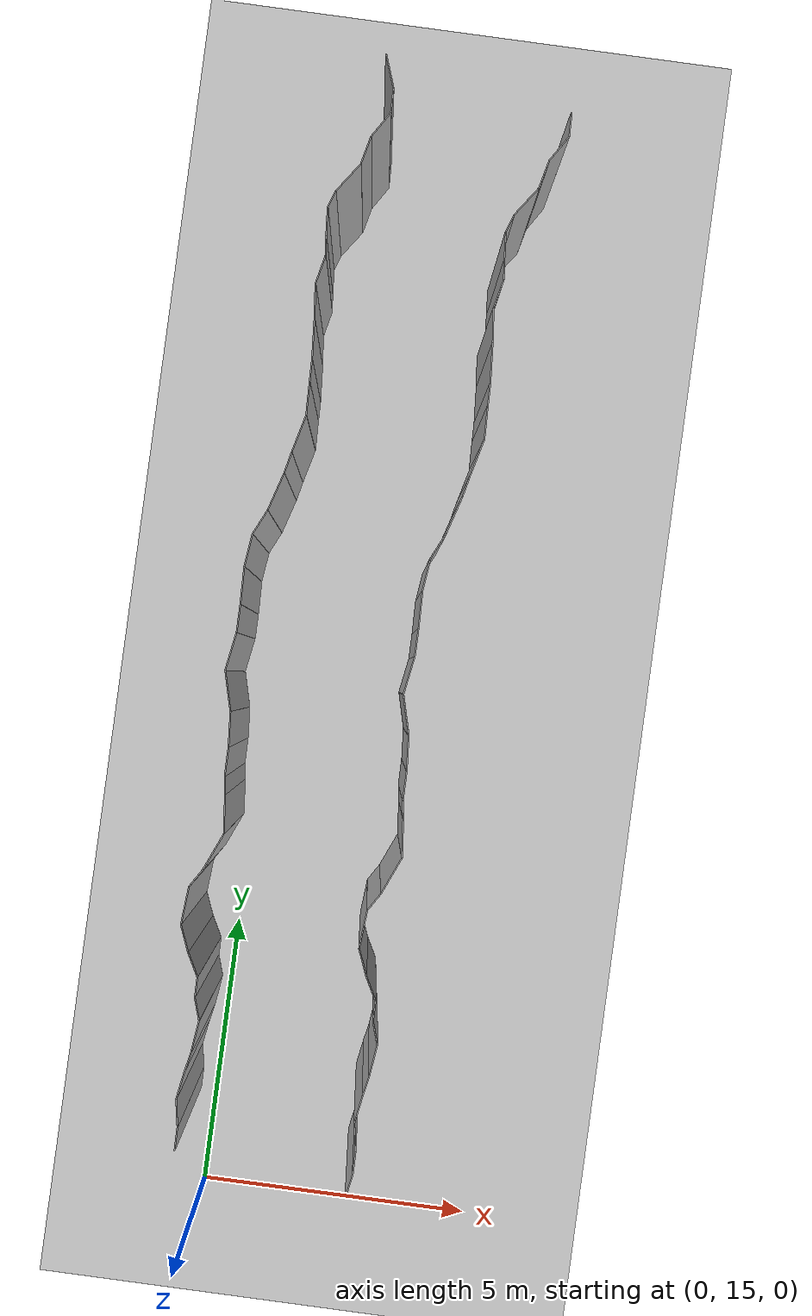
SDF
<sdf version="1.6">
 <world name="default">
  <model name="ground_plane">
   <static>1</static>
   <link name="link">
    <collision name="collision">
     <geometry><plane><normal>0 0 1</normal><size>200 200</size></plane></geometry>
     <surface><friction><ode><mu>100</mu><mu2>50</mu2></ode></friction></surface>
    </collision>
    <visual name="visual">
     <cast_shadows>0</cast_shadows>
     <geometry><plane><normal>0 0 1</normal><size>200 200</size></plane></geometry>
     <material>
      <script><uri>file://media/materials/scripts/gazebo.material</uri><name>Gazebo/Grey</name></script>
     </material>
    </visual>
   </link>
   <pose>0 100 0 0 -0 0</pose>
  </model>
  <model name="wall_73">
   <static>1</static>
   <pose>2.658869126771613 16.50026985802617 2 0 0 -0.1731578660085581</pose>
   <link name="link">
    <collision name="collision"><geometry><box><size>0.02 0.404420322567 4</size></box></geometry></collision>
    <visual name="visual">
     <material>
      <script><name>Gazebo/Grey</name><uri>file://media/materials/scripts/gazebo.material</uri></script>
     </material>
     <geometry><box><size>0.02 0.404420322567 4</size></box></geometry>
    </visual>
   </link>
  </model>
  <model name="wall_74">
   <static>1</static>
   <pose>-0.3087108087761171 16.89664331656107 2 0 0 0.012269457442747742</pose>
   <link name="link">
    <collision name="collision"><geometry><box><size>0.02 0.394404144756 4</size></box></geometry></collision>
    <visual name="visual">
     <material>
      <script><name>Gazebo/Grey</name><uri>file://media/materials/scripts/gazebo.material</uri></script>
     </material>
     <geometry><box><size>0.02 0.394404144756 4</size></box></geometry>
    </visual>
   </link>
  </model>
  <model name="wall_75">
   <static>1</static>
   <pose>2.6912891912238828 16.89664331656107 2 0 0 0.012269457442747742</pose>
   <link name="link">
    <collision name="collision"><geometry><box><size>0.02 0.394404144756 4</size></box></geometry></collision>
    <visual name="visual">
     <material>
      <script><name>Gazebo/Grey</name><uri>file://media/materials/scripts/gazebo.material</uri></script>
     </material>
     <geometry><box><size>0.02 0.394404144756 4</size></box></geometry>
    </visual>
   </link>
  </model>
  <model name="wall_76">
   <static>1</static>
   <pose>-0.3530695926732368 17.322582289823302 2 0 0 0.18132595956905626</pose>
   <link name="link">
    <collision name="collision"><geometry><box><size>0.02 0.465129073691 4</size></box></geometry></collision>
    <visual name="visual">
     <material>
      <script><name>Gazebo/Grey</name><uri>file://media/materials/scripts/gazebo.material</uri></script>
     </material>
     <geometry><box><size>0.02 0.465129073691 4</size></box></geometry>
    </visual>
   </link>
  </model>
  <model name="wall_77">
   <static>1</static>
   <pose>2.646930407326763 17.322582289823302 2 0 0 0.18132595956905626</pose>
   <link name="link">
    <collision name="collision"><geometry><box><size>0.02 0.465129073691 4</size></box></geometry></collision>
    <visual name="visual">
     <material>
      <script><name>Gazebo/Grey</name><uri>file://media/materials/scripts/gazebo.material</uri></script>
     </material>
     <geometry><box><size>0.02 0.465129073691 4</size></box></geometry>
    </visual>
   </link>
  </model>
  <model name="wall_78">
   <static>1</static>
   <pose>-0.35659133693472317 17.789352559761916 2 0 0 -0.1600255368035915</pose>
   <link name="link">
    <collision name="collision"><geometry><box><size>0.02 0.482197992039 4</size></box></geometry></collision>
    <visual name="visual">
     <material>
      <script><name>Gazebo/Grey</name><uri>file://media/materials/scripts/gazebo.material</uri></script>
     </material>
     <geometry><box><size>0.02 0.482197992039 4</size></box></geometry>
    </visual>
   </link>
  </model>
  <model name="wall_79">
   <static>1</static>
   <pose>2.643408663065277 17.789352559761916 2 0 0 -0.1600255368035915</pose>
   <link name="link">
    <collision name="collision"><geometry><box><size>0.02 0.482197992039 4</size></box></geometry></collision>
    <visual name="visual">
     <material>
      <script><name>Gazebo/Grey</name><uri>file://media/materials/scripts/gazebo.material</uri></script>
     </material>
     <geometry><box><size>0.02 0.482197992039 4</size></box></geometry>
    </visual>
   </link>
  </model>
  <model name="wall_80">
   <static>1</static>
   <pose>-0.2866491413764098 18.18500765076612 2 0 0 -0.19737936277043475</pose>
   <link name="link">
    <collision name="collision"><geometry><box><size>0.02 0.321515727166 4</size></box></geometry></collision>
    <visual name="visual">
     <material>
      <script><name>Gazebo/Grey</name><uri>file://media/materials/scripts/gazebo.material</uri></script>
     </material>
     <geometry><box><size>0.02 0.321515727166 4</size></box></geometry>
    </visual>
   </link>
  </model>
  <model name="wall_81">
   <static>1</static>
   <pose>2.71335085862359 18.18500765076612 2 0 0 -0.19737936277043475</pose>
   <link name="link">
    <collision name="collision"><geometry><box><size>0.02 0.321515727166 4</size></box></geometry></collision>
    <visual name="visual">
     <material>
      <script><name>Gazebo/Grey</name><uri>file://media/materials/scripts/gazebo.material</uri></script>
     </material>
     <geometry><box><size>0.02 0.321515727166 4</size></box></geometry>
    </visual>
   </link>
  </model>
  <model name="wall_82">
   <static>1</static>
   <pose>-0.2231565532036521 18.62250226336746 2 0 0 -0.11373611406130761</pose>
   <link name="link">
    <collision name="collision"><geometry><box><size>0.02 0.563355927706 4</size></box></geometry></collision>
    <visual name="visual">
     <material>
      <script><name>Gazebo/Grey</name><uri>file://media/materials/scripts/gazebo.material</uri></script>
     </material>
     <geometry><box><size>0.02 0.563355927706 4</size></box></geometry>
    </visual>
   </link>
  </model>
  <model name="wall_83">
   <static>1</static>
   <pose>2.776843446796348 18.62250226336746 2 0 0 -0.11373611406130761</pose>
   <link name="link">
    <collision name="collision"><geometry><box><size>0.02 0.563355927706 4</size></box></geometry></collision>
    <visual name="visual">
     <material>
      <script><name>Gazebo/Grey</name><uri>file://media/materials/scripts/gazebo.material</uri></script>
     </material>
     <geometry><box><size>0.02 0.563355927706 4</size></box></geometry>
    </visual>
   </link>
  </model>
  <model name="wall_84">
   <static>1</static>
   <pose>-0.25260437373817557 19.090832963130495 2 0 0 0.31500979514093436</pose>
   <link name="link">
    <collision name="collision"><geometry><box><size>0.02 0.396453453192 4</size></box></geometry></collision>
    <visual name="visual">
     <material>
      <script><name>Gazebo/Grey</name><uri>file://media/materials/scripts/gazebo.material</uri></script>
     </material>
     <geometry><box><size>0.02 0.396453453192 4</size></box></geometry>
    </visual>
   </link>
  </model>
  <model name="wall_85">
   <static>1</static>
   <pose>2.7473956262618247 19.090832963130495 2 0 0 0.31500979514093436</pose>
   <link name="link">
    <collision name="collision"><geometry><box><size>0.02 0.396453453192 4</size></box></geometry></collision>
    <visual name="visual">
     <material>
      <script><name>Gazebo/Grey</name><uri>file://media/materials/scripts/gazebo.material</uri></script>
     </material>
     <geometry><box><size>0.02 0.396453453192 4</size></box></geometry>
    </visual>
   </link>
  </model>
  <model name="wall_86">
   <static>1</static>
   <pose>-0.31498283444763997 19.449805418435357 2 0 0 0.005646337447293839</pose>
   <link name="link">
    <collision name="collision"><geometry><box><size>0.02 0.341005041838 4</size></box></geometry></collision>
    <visual name="visual">
     <material>
      <script><name>Gazebo/Grey</name><uri>file://media/materials/scripts/gazebo.material</uri></script>
     </material>
     <geometry><box><size>0.02 0.341005041838 4</size></box></geometry>
    </visual>
   </link>
  </model>
  <model name="wall_87">
   <static>1</static>
   <pose>2.68501716555236 19.449805418435357 2 0 0 0.005646337447293839</pose>
   <link name="link">
    <collision name="collision"><geometry><box><size>0.02 0.341005041838 4</size></box></geometry></collision>
    <visual name="visual">
     <material>
      <script><name>Gazebo/Grey</name><uri>file://media/materials/scripts/gazebo.material</uri></script>
     </material>
     <geometry><box><size>0.02 0.341005041838 4</size></box></geometry>
    </visual>
   </link>
  </model>
  <model name="wall_88">
   <static>1</static>
   <pose>-0.4210132094849025 19.815427562531113 2 0 0 0.4939484783348121</pose>
   <link name="link">
    <collision name="collision"><geometry><box><size>0.02 0.443224287674 4</size></box></geometry></collision>
    <visual name="visual">
     <material>
      <script><name>Gazebo/Grey</name><uri>file://media/materials/scripts/gazebo.material</uri></script>
     </material>
     <geometry><box><size>0.02 0.443224287674 4</size></box></geometry>
    </visual>
   </link>
  </model>
  <model name="wall_89">
   <static>1</static>
   <pose>2.5789867905150974 19.815427562531113 2 0 0 0.4939484783348121</pose>
   <link name="link">
    <collision name="collision"><geometry><box><size>0.02 0.443224287674 4</size></box></geometry></collision>
    <visual name="visual">
     <material>
      <script><name>Gazebo/Grey</name><uri>file://media/materials/scripts/gazebo.material</uri></script>
     </material>
     <geometry><box><size>0.02 0.443224287674 4</size></box></geometry>
    </visual>
   </link>
  </model>
  <model name="wall_90">
   <static>1</static>
   <pose>-0.6163092625902354 20.23183404676666 2 0 0 0.3871686472160626</pose>
   <link name="link">
    <collision name="collision"><geometry><box><size>0.02 0.477944908812 4</size></box></geometry></collision>
    <visual name="visual">
     <material>
      <script><name>Gazebo/Grey</name><uri>file://media/materials/scripts/gazebo.material</uri></script>
     </material>
     <geometry><box><size>0.02 0.477944908812 4</size></box></geometry>
    </visual>
   </link>
  </model>
  <model name="wall_91">
   <static>1</static>
   <pose>2.3836907374097644 20.23183404676666 2 0 0 0.3871686472160626</pose>
   <link name="link">
    <collision name="collision"><geometry><box><size>0.02 0.477944908812 4</size></box></geometry></collision>
    <visual name="visual">
     <material>
      <script><name>Gazebo/Grey</name><uri>file://media/materials/scripts/gazebo.material</uri></script>
     </material>
     <geometry><box><size>0.02 0.477944908812 4</size></box></geometry>
    </visual>
   </link>
  </model>
  <model name="wall_92">
   <static>1</static>
   <pose>-0.6821982862722386 20.773969563873283 2 0 0 -0.07571367700383373</pose>
   <link name="link">
    <collision name="collision"><geometry><box><size>0.02 0.643546451487 4</size></box></geometry></collision>
    <visual name="visual">
     <material>
      <script><name>Gazebo/Grey</name><uri>file://media/materials/scripts/gazebo.material</uri></script>
     </material>
     <geometry><box><size>0.02 0.643546451487 4</size></box></geometry>
    </visual>
   </link>
  </model>
  <model name="wall_93">
   <static>1</static>
   <pose>2.3178017137277616 20.773969563873283 2 0 0 -0.07571367700383373</pose>
   <link name="link">
    <collision name="collision"><geometry><box><size>0.02 0.643546451487 4</size></box></geometry></collision>
    <visual name="visual">
     <material>
      <script><name>Gazebo/Grey</name><uri>file://media/materials/scripts/gazebo.material</uri></script>
     </material>
     <geometry><box><size>0.02 0.643546451487 4</size></box></geometry>
    </visual>
   </link>
  </model>
  <model name="wall_94">
   <static>1</static>
   <pose>-0.5614120115282334 21.252134825890693 2 0 0 -0.5499858893473405</pose>
   <link name="link">
    <collision name="collision"><geometry><box><size>0.02 0.369051031509 4</size></box></geometry></collision>
    <visual name="visual">
     <material>
      <script><name>Gazebo/Grey</name><uri>file://media/materials/scripts/gazebo.material</uri></script>
     </material>
     <geometry><box><size>0.02 0.369051031509 4</size></box></geometry>
    </visual>
   </link>
  </model>
  <model name="wall_95">
   <static>1</static>
   <pose>2.4385879884717667 21.252134825890693 2 0 0 -0.5499858893473405</pose>
   <link name="link">
    <collision name="collision"><geometry><box><size>0.02 0.369051031509 4</size></box></geometry></collision>
    <visual name="visual">
     <material>
      <script><name>Gazebo/Grey</name><uri>file://media/materials/scripts/gazebo.material</uri></script>
     </material>
     <geometry><box><size>0.02 0.369051031509 4</size></box></geometry>
    </visual>
   </link>
  </model>
  <model name="wall_96">
   <static>1</static>
   <pose>-0.33176657974889967 21.7266747197822 2 0 0 -0.3975304450154721</pose>
   <link name="link">
    <collision name="collision"><geometry><box><size>0.02 0.68811099333 4</size></box></geometry></collision>
    <visual name="visual">
     <material>
      <script><name>Gazebo/Grey</name><uri>file://media/materials/scripts/gazebo.material</uri></script>
     </material>
     <geometry><box><size>0.02 0.68811099333 4</size></box></geometry>
    </visual>
   </link>
  </model>
  <model name="wall_97">
   <static>1</static>
   <pose>2.6682334202511004 21.7266747197822 2 0 0 -0.3975304450154721</pose>
   <link name="link">
    <collision name="collision"><geometry><box><size>0.02 0.68811099333 4</size></box></geometry></collision>
    <visual name="visual">
     <material>
      <script><name>Gazebo/Grey</name><uri>file://media/materials/scripts/gazebo.material</uri></script>
     </material>
     <geometry><box><size>0.02 0.68811099333 4</size></box></geometry>
    </visual>
   </link>
  </model>
  <model name="wall_98">
   <static>1</static>
   <pose>-0.23316513521002616 22.36951696986751 2 0 0 0.10585393020668167</pose>
   <link name="link">
    <collision name="collision"><geometry><box><size>0.02 0.65489814852 4</size></box></geometry></collision>
    <visual name="visual">
     <material>
      <script><name>Gazebo/Grey</name><uri>file://media/materials/scripts/gazebo.material</uri></script>
     </material>
     <geometry><box><size>0.02 0.65489814852 4</size></box></geometry>
    </visual>
   </link>
  </model>
  <model name="wall_99">
   <static>1</static>
   <pose>2.7668348647899736 22.36951696986751 2 0 0 0.10585393020668167</pose>
   <link name="link">
    <collision name="collision"><geometry><box><size>0.02 0.65489814852 4</size></box></geometry></collision>
    <visual name="visual">
     <material>
      <script><name>Gazebo/Grey</name><uri>file://media/materials/scripts/gazebo.material</uri></script>
     </material>
     <geometry><box><size>0.02 0.65489814852 4</size></box></geometry>
    </visual>
   </link>
  </model>
  <model name="wall_100">
   <static>1</static>
   <pose>-0.2905735342766929 22.847543351877647 2 0 0 0.14856781748174686</pose>
   <link name="link">
    <collision name="collision"><geometry><box><size>0.02 0.308215551348 4</size></box></geometry></collision>
    <visual name="visual">
     <material>
      <script><name>Gazebo/Grey</name><uri>file://media/materials/scripts/gazebo.material</uri></script>
     </material>
     <geometry><box><size>0.02 0.308215551348 4</size></box></geometry>
    </visual>
   </link>
  </model>
  <model name="wall_101">
   <static>1</static>
   <pose>2.709426465723307 22.847543351877647 2 0 0 0.14856781748174686</pose>
   <link name="link">
    <collision name="collision"><geometry><box><size>0.02 0.308215551348 4</size></box></geometry></collision>
    <visual name="visual">
     <material>
      <script><name>Gazebo/Grey</name><uri>file://media/materials/scripts/gazebo.material</uri></script>
     </material>
     <geometry><box><size>0.02 0.308215551348 4</size></box></geometry>
    </visual>
   </link>
  </model>
  <model name="wall_102">
   <static>1</static>
   <pose>-0.3149790743787968 23.246512554853442 2 0 0 0.0064657746558790365</pose>
   <link name="link">
    <collision name="collision"><geometry><box><size>0.02 0.493128438348 4</size></box></geometry></collision>
    <visual name="visual">
     <material>
      <script><name>Gazebo/Grey</name><uri>file://media/materials/scripts/gazebo.material</uri></script>
     </material>
     <geometry><box><size>0.02 0.493128438348 4</size></box></geometry>
    </visual>
   </link>
  </model>
  <model name="wall_103">
   <static>1</static>
   <pose>2.6850209256212034 23.246512554853442 2 0 0 0.0064657746558790365</pose>
   <link name="link">
    <collision name="collision"><geometry><box><size>0.02 0.493128438348 4</size></box></geometry></collision>
    <visual name="visual">
     <material>
      <script><name>Gazebo/Grey</name><uri>file://media/materials/scripts/gazebo.material</uri></script>
     </material>
     <geometry><box><size>0.02 0.493128438348 4</size></box></geometry>
    </visual>
   </link>
  </model>
  <model name="wall_104">
   <static>1</static>
   <pose>-0.34027030061243074 23.790517139347806 2 0 0 0.07950048596791094</pose>
   <link name="link">
    <collision name="collision"><geometry><box><size>0.02 0.596775955112 4</size></box></geometry></collision>
    <visual name="visual">
     <material>
      <script><name>Gazebo/Grey</name><uri>file://media/materials/scripts/gazebo.material</uri></script>
     </material>
     <geometry><box><size>0.02 0.596775955112 4</size></box></geometry>
    </visual>
   </link>
  </model>
  <model name="wall_105">
   <static>1</static>
   <pose>2.659729699387569 23.790517139347806 2 0 0 0.07950048596791094</pose>
   <link name="link">
    <collision name="collision"><geometry><box><size>0.02 0.596775955112 4</size></box></geometry></collision>
    <visual name="visual">
     <material>
      <script><name>Gazebo/Grey</name><uri>file://media/materials/scripts/gazebo.material</uri></script>
     </material>
     <geometry><box><size>0.02 0.596775955112 4</size></box></geometry>
    </visual>
   </link>
  </model>
  <model name="wall_106">
   <static>1</static>
   <pose>-0.45287071812648033 24.422036674167828 2 0 0 0.260090919706694</pose>
   <link name="link">
    <collision name="collision"><geometry><box><size>0.02 0.69140223886 4</size></box></geometry></collision>
    <visual name="visual">
     <material>
      <script><name>Gazebo/Grey</name><uri>file://media/materials/scripts/gazebo.material</uri></script>
     </material>
     <geometry><box><size>0.02 0.69140223886 4</size></box></geometry>
    </visual>
   </link>
  </model>
  <model name="wall_107">
   <static>1</static>
   <pose>2.5471292818735196 24.422036674167828 2 0 0 0.260090919706694</pose>
   <link name="link">
    <collision name="collision"><geometry><box><size>0.02 0.69140223886 4</size></box></geometry></collision>
    <visual name="visual">
     <material>
      <script><name>Gazebo/Grey</name><uri>file://media/materials/scripts/gazebo.material</uri></script>
     </material>
     <geometry><box><size>0.02 0.69140223886 4</size></box></geometry>
    </visual>
   </link>
  </model>
  <model name="wall_108">
   <static>1</static>
   <pose>-0.49038769322437836 25.081624239325503 2 0 0 -0.1565705770784225</pose>
   <link name="link">
    <collision name="collision"><geometry><box><size>0.02 0.659089179241 4</size></box></geometry></collision>
    <visual name="visual">
     <material>
      <script><name>Gazebo/Grey</name><uri>file://media/materials/scripts/gazebo.material</uri></script>
     </material>
     <geometry><box><size>0.02 0.659089179241 4</size></box></geometry>
    </visual>
   </link>
  </model>
  <model name="wall_109">
   <static>1</static>
   <pose>2.5096123067756215 25.081624239325503 2 0 0 -0.1565705770784225</pose>
   <link name="link">
    <collision name="collision"><geometry><box><size>0.02 0.659089179241 4</size></box></geometry></collision>
    <visual name="visual">
     <material>
      <script><name>Gazebo/Grey</name><uri>file://media/materials/scripts/gazebo.material</uri></script>
     </material>
     <geometry><box><size>0.02 0.659089179241 4</size></box></geometry>
    </visual>
   </link>
  </model>
  <model name="wall_110">
   <static>1</static>
   <pose>-0.43943652499736885 25.64405556807473 2 0 0 0.0018371987051538391</pose>
   <link name="link">
    <collision name="collision"><geometry><box><size>0.02 0.473836357964 4</size></box></geometry></collision>
    <visual name="visual">
     <material>
      <script><name>Gazebo/Grey</name><uri>file://media/materials/scripts/gazebo.material</uri></script>
     </material>
     <geometry><box><size>0.02 0.473836357964 4</size></box></geometry>
    </visual>
   </link>
  </model>
  <model name="wall_111">
   <static>1</static>
   <pose>2.560563475002631 25.64405556807473 2 0 0 0.0018371987051538391</pose>
   <link name="link">
    <collision name="collision"><geometry><box><size>0.02 0.473836357964 4</size></box></geometry></collision>
    <visual name="visual">
     <material>
      <script><name>Gazebo/Grey</name><uri>file://media/materials/scripts/gazebo.material</uri></script>
     </material>
     <geometry><box><size>0.02 0.473836357964 4</size></box></geometry>
    </visual>
   </link>
  </model>
  <model name="wall_112">
   <static>1</static>
   <pose>-0.44920069268218354 26.197704823313195 2 0 0 0.029445150232871652</pose>
   <link name="link">
    <collision name="collision"><geometry><box><size>0.02 0.633737662956 4</size></box></geometry></collision>
    <visual name="visual">
     <material>
      <script><name>Gazebo/Grey</name><uri>file://media/materials/scripts/gazebo.material</uri></script>
     </material>
     <geometry><box><size>0.02 0.633737662956 4</size></box></geometry>
    </visual>
   </link>
  </model>
  <model name="wall_113">
   <static>1</static>
   <pose>2.5507993073178166 26.197704823313195 2 0 0 0.029445150232871652</pose>
   <link name="link">
    <collision name="collision"><geometry><box><size>0.02 0.633737662956 4</size></box></geometry></collision>
    <visual name="visual">
     <material>
      <script><name>Gazebo/Grey</name><uri>file://media/materials/scripts/gazebo.material</uri></script>
     </material>
     <geometry><box><size>0.02 0.633737662956 4</size></box></geometry>
    </visual>
   </link>
  </model>
  <model name="wall_114">
   <static>1</static>
   <pose>-0.4268784752055749 26.79324874928811 2 0 0 -0.1130372696072286</pose>
   <link name="link">
    <collision name="collision"><geometry><box><size>0.02 0.561206470328 4</size></box></geometry></collision>
    <visual name="visual">
     <material>
      <script><name>Gazebo/Grey</name><uri>file://media/materials/scripts/gazebo.material</uri></script>
     </material>
     <geometry><box><size>0.02 0.561206470328 4</size></box></geometry>
    </visual>
   </link>
  </model>
  <model name="wall_115">
   <static>1</static>
   <pose>2.5731215247944252 26.79324874928811 2 0 0 -0.1130372696072286</pose>
   <link name="link">
    <collision name="collision"><geometry><box><size>0.02 0.561206470328 4</size></box></geometry></collision>
    <visual name="visual">
     <material>
      <script><name>Gazebo/Grey</name><uri>file://media/materials/scripts/gazebo.material</uri></script>
     </material>
     <geometry><box><size>0.02 0.561206470328 4</size></box></geometry>
    </visual>
   </link>
  </model>
  <model name="wall_116">
   <static>1</static>
   <pose>-0.2968633645609247 27.28419847994507 2 0 0 -0.4341724851815221</pose>
   <link name="link">
    <collision name="collision"><geometry><box><size>0.02 0.467665267563 4</size></box></geometry></collision>
    <visual name="visual">
     <material>
      <script><name>Gazebo/Grey</name><uri>file://media/materials/scripts/gazebo.material</uri></script>
     </material>
     <geometry><box><size>0.02 0.467665267563 4</size></box></geometry>
    </visual>
   </link>
  </model>
  <model name="wall_117">
   <static>1</static>
   <pose>2.7031366354390753 27.28419847994507 2 0 0 -0.4341724851815221</pose>
   <link name="link">
    <collision name="collision"><geometry><box><size>0.02 0.467665267563 4</size></box></geometry></collision>
    <visual name="visual">
     <material>
      <script><name>Gazebo/Grey</name><uri>file://media/materials/scripts/gazebo.material</uri></script>
     </material>
     <geometry><box><size>0.02 0.467665267563 4</size></box></geometry>
    </visual>
   </link>
  </model>
  <model name="wall_118">
   <static>1</static>
   <pose>-0.10361012116887132 27.821605806746955 2 0 0 -0.2838474382901545</pose>
   <link name="link">
    <collision name="collision"><geometry><box><size>0.02 0.677656470673 4</size></box></geometry></collision>
    <visual name="visual">
     <material>
      <script><name>Gazebo/Grey</name><uri>file://media/materials/scripts/gazebo.material</uri></script>
     </material>
     <geometry><box><size>0.02 0.677656470673 4</size></box></geometry>
    </visual>
   </link>
  </model>
  <model name="wall_119">
   <static>1</static>
   <pose>2.896389878831129 27.821605806746955 2 0 0 -0.2838474382901545</pose>
   <link name="link">
    <collision name="collision"><geometry><box><size>0.02 0.677656470673 4</size></box></geometry></collision>
    <visual name="visual">
     <material>
      <script><name>Gazebo/Grey</name><uri>file://media/materials/scripts/gazebo.material</uri></script>
     </material>
     <geometry><box><size>0.02 0.677656470673 4</size></box></geometry>
    </visual>
   </link>
  </model>
  <model name="wall_120">
   <static>1</static>
   <pose>0.030283921874263355 28.327337128675573 2 0 0 -0.21286495639136688</pose>
   <link name="link">
    <collision name="collision"><geometry><box><size>0.02 0.369256798415 4</size></box></geometry></collision>
    <visual name="visual">
     <material>
      <script><name>Gazebo/Grey</name><uri>file://media/materials/scripts/gazebo.material</uri></script>
     </material>
     <geometry><box><size>0.02 0.369256798415 4</size></box></geometry>
    </visual>
   </link>
  </model>
  <model name="wall_121">
   <static>1</static>
   <pose>3.0302839218742634 28.327337128675573 2 0 0 -0.21286495639136688</pose>
   <link name="link">
    <collision name="collision"><geometry><box><size>0.02 0.369256798415 4</size></box></geometry></collision>
    <visual name="visual">
     <material>
      <script><name>Gazebo/Grey</name><uri>file://media/materials/scripts/gazebo.material</uri></script>
     </material>
     <geometry><box><size>0.02 0.369256798415 4</size></box></geometry>
    </visual>
   </link>
  </model>
  <model name="wall_122">
   <static>1</static>
   <pose>0.14746259217284302 28.828581640273036 2 0 0 -0.2390375910197555</pose>
   <link name="link">
    <collision name="collision"><geometry><box><size>0.02 0.660342455889 4</size></box></geometry></collision>
    <visual name="visual">
     <material>
      <script><name>Gazebo/Grey</name><uri>file://media/materials/scripts/gazebo.material</uri></script>
     </material>
     <geometry><box><size>0.02 0.660342455889 4</size></box></geometry>
    </visual>
   </link>
  </model>
  <model name="wall_123">
   <static>1</static>
   <pose>3.147462592172843 28.828581640273036 2 0 0 -0.2390375910197555</pose>
   <link name="link">
    <collision name="collision"><geometry><box><size>0.02 0.660342455889 4</size></box></geometry></collision>
    <visual name="visual">
     <material>
      <script><name>Gazebo/Grey</name><uri>file://media/materials/scripts/gazebo.material</uri></script>
     </material>
     <geometry><box><size>0.02 0.660342455889 4</size></box></geometry>
    </visual>
   </link>
  </model>
  <model name="wall_124">
   <static>1</static>
   <pose>0.21672453372716605 29.43150341626965 2 0 0 0.03157660027609039</pose>
   <link name="link">
    <collision name="collision"><geometry><box><size>0.02 0.564558512689 4</size></box></geometry></collision>
    <visual name="visual">
     <material>
      <script><name>Gazebo/Grey</name><uri>file://media/materials/scripts/gazebo.material</uri></script>
     </material>
     <geometry><box><size>0.02 0.564558512689 4</size></box></geometry>
    </visual>
   </link>
  </model>
  <model name="wall_125">
   <static>1</static>
   <pose>3.216724533727166 29.43150341626965 2 0 0 0.03157660027609039</pose>
   <link name="link">
    <collision name="collision"><geometry><box><size>0.02 0.564558512689 4</size></box></geometry></collision>
    <visual name="visual">
     <material>
      <script><name>Gazebo/Grey</name><uri>file://media/materials/scripts/gazebo.material</uri></script>
     </material>
     <geometry><box><size>0.02 0.564558512689 4</size></box></geometry>
    </visual>
   </link>
  </model>
  <model name="wall_126">
   <static>1</static>
   <pose>0.20293701273933076 29.90284697592679 2 0 0 0.025763080562010942</pose>
   <link name="link">
    <collision name="collision"><geometry><box><size>0.02 0.3785356557 4</size></box></geometry></collision>
    <visual name="visual">
     <material>
      <script><name>Gazebo/Grey</name><uri>file://media/materials/scripts/gazebo.material</uri></script>
     </material>
     <geometry><box><size>0.02 0.3785356557 4</size></box></geometry>
    </visual>
   </link>
  </model>
  <model name="wall_127">
   <static>1</static>
   <pose>3.202937012739331 29.90284697592679 2 0 0 0.025763080562010942</pose>
   <link name="link">
    <collision name="collision"><geometry><box><size>0.02 0.3785356557 4</size></box></geometry></collision>
    <visual name="visual">
     <material>
      <script><name>Gazebo/Grey</name><uri>file://media/materials/scripts/gazebo.material</uri></script>
     </material>
     <geometry><box><size>0.02 0.3785356557 4</size></box></geometry>
    </visual>
   </link>
  </model>
  <model name="wall_128">
   <static>1</static>
   <pose>0.17253122922699565 30.430579498268635 2 0 0 0.0752729511620315</pose>
   <link name="link">
    <collision name="collision"><geometry><box><size>0.02 0.678977647406 4</size></box></geometry></collision>
    <visual name="visual">
     <material>
      <script><name>Gazebo/Grey</name><uri>file://media/materials/scripts/gazebo.material</uri></script>
     </material>
     <geometry><box><size>0.02 0.678977647406 4</size></box></geometry>
    </visual>
   </link>
  </model>
  <model name="wall_129">
   <static>1</static>
   <pose>3.172531229226996 30.430579498268635 2 0 0 0.0752729511620315</pose>
   <link name="link">
    <collision name="collision"><geometry><box><size>0.02 0.678977647406 4</size></box></geometry></collision>
    <visual name="visual">
     <material>
      <script><name>Gazebo/Grey</name><uri>file://media/materials/scripts/gazebo.material</uri></script>
     </material>
     <geometry><box><size>0.02 0.678977647406 4</size></box></geometry>
    </visual>
   </link>
  </model>
  <model name="wall_130">
   <static>1</static>
   <pose>0.11578706106986342 31.058432300573553 2 0 0 0.10746970262357924</pose>
   <link name="link">
    <collision name="collision"><geometry><box><size>0.02 0.582008386873 4</size></box></geometry></collision>
    <visual name="visual">
     <material>
      <script><name>Gazebo/Grey</name><uri>file://media/materials/scripts/gazebo.material</uri></script>
     </material>
     <geometry><box><size>0.02 0.582008386873 4</size></box></geometry>
    </visual>
   </link>
  </model>
  <model name="wall_131">
   <static>1</static>
   <pose>3.1157870610698635 31.058432300573553 2 0 0 0.10746970262357924</pose>
   <link name="link">
    <collision name="collision"><geometry><box><size>0.02 0.582008386873 4</size></box></geometry></collision>
    <visual name="visual">
     <material>
      <script><name>Gazebo/Grey</name><uri>file://media/materials/scripts/gazebo.material</uri></script>
     </material>
     <geometry><box><size>0.02 0.582008386873 4</size></box></geometry>
    </visual>
   </link>
  </model>
  <model name="wall_132">
   <static>1</static>
   <pose>0.13713712117043492 31.590615388244554 2 0 0 -0.21315168817238642</pose>
   <link name="link">
    <collision name="collision"><geometry><box><size>0.02 0.49696230185 4</size></box></geometry></collision>
    <visual name="visual">
     <material>
      <script><name>Gazebo/Grey</name><uri>file://media/materials/scripts/gazebo.material</uri></script>
     </material>
     <geometry><box><size>0.02 0.49696230185 4</size></box></geometry>
    </visual>
   </link>
  </model>
  <model name="wall_133">
   <static>1</static>
   <pose>3.137137121170435 31.590615388244554 2 0 0 -0.21315168817238642</pose>
   <link name="link">
    <collision name="collision"><geometry><box><size>0.02 0.49696230185 4</size></box></geometry></collision>
    <visual name="visual">
     <material>
      <script><name>Gazebo/Grey</name><uri>file://media/materials/scripts/gazebo.material</uri></script>
     </material>
     <geometry><box><size>0.02 0.49696230185 4</size></box></geometry>
    </visual>
   </link>
  </model>
  <model name="wall_134">
   <static>1</static>
   <pose>0.17238978869454585 31.9978559771795 2 0 0 0.10492451509930235</pose>
   <link name="link">
    <collision name="collision"><geometry><box><size>0.02 0.33058365548 4</size></box></geometry></collision>
    <visual name="visual">
     <material>
      <script><name>Gazebo/Grey</name><uri>file://media/materials/scripts/gazebo.material</uri></script>
     </material>
     <geometry><box><size>0.02 0.33058365548 4</size></box></geometry>
    </visual>
   </link>
  </model>
  <model name="wall_135">
   <static>1</static>
   <pose>3.172389788694546 31.9978559771795 2 0 0 0.10492451509930235</pose>
   <link name="link">
    <collision name="collision"><geometry><box><size>0.02 0.33058365548 4</size></box></geometry></collision>
    <visual name="visual">
     <material>
      <script><name>Gazebo/Grey</name><uri>file://media/materials/scripts/gazebo.material</uri></script>
     </material>
     <geometry><box><size>0.02 0.33058365548 4</size></box></geometry>
    </visual>
   </link>
  </model>
  <model name="wall_136">
   <static>1</static>
   <pose>0.13598703425193126 32.40172453793223 2 0 0 0.07955005693292047</pose>
   <link name="link">
    <collision name="collision"><geometry><box><size>0.02 0.480491043246 4</size></box></geometry></collision>
    <visual name="visual">
     <material>
      <script><name>Gazebo/Grey</name><uri>file://media/materials/scripts/gazebo.material</uri></script>
     </material>
     <geometry><box><size>0.02 0.480491043246 4</size></box></geometry>
    </visual>
   </link>
  </model>
  <model name="wall_137">
   <static>1</static>
   <pose>3.135987034251931 32.40172453793223 2 0 0 0.07955005693292047</pose>
   <link name="link">
    <collision name="collision"><geometry><box><size>0.02 0.480491043246 4</size></box></geometry></collision>
    <visual name="visual">
     <material>
      <script><name>Gazebo/Grey</name><uri>file://media/materials/scripts/gazebo.material</uri></script>
     </material>
     <geometry><box><size>0.02 0.480491043246 4</size></box></geometry>
    </visual>
   </link>
  </model>
  <model name="wall_138">
   <static>1</static>
   <pose>0.16590009497409242 32.7833085787552 2 0 0 -0.3320912161690458</pose>
   <link name="link">
    <collision name="collision"><geometry><box><size>0.02 0.300621742254 4</size></box></geometry></collision>
    <visual name="visual">
     <material>
      <script><name>Gazebo/Grey</name><uri>file://media/materials/scripts/gazebo.material</uri></script>
     </material>
     <geometry><box><size>0.02 0.300621742254 4</size></box></geometry>
    </visual>
   </link>
  </model>
  <model name="wall_139">
   <static>1</static>
   <pose>3.1659000949740923 32.7833085787552 2 0 0 -0.3320912161690458</pose>
   <link name="link">
    <collision name="collision"><geometry><box><size>0.02 0.300621742254 4</size></box></geometry></collision>
    <visual name="visual">
     <material>
      <script><name>Gazebo/Grey</name><uri>file://media/materials/scripts/gazebo.material</uri></script>
     </material>
     <geometry><box><size>0.02 0.300621742254 4</size></box></geometry>
    </visual>
   </link>
  </model>
  <model name="wall_140">
   <static>1</static>
   <pose>0.39119620399043886 33.176950155334524 2 0 0 -0.6112896348617464</pose>
   <link name="link">
    <collision name="collision"><geometry><box><size>0.02 0.614337942785 4</size></box></geometry></collision>
    <visual name="visual">
     <material>
      <script><name>Gazebo/Grey</name><uri>file://media/materials/scripts/gazebo.material</uri></script>
     </material>
     <geometry><box><size>0.02 0.614337942785 4</size></box></geometry>
    </visual>
   </link>
  </model>
  <model name="wall_141">
   <static>1</static>
   <pose>3.3911962039904386 33.176950155334524 2 0 0 -0.6112896348617464</pose>
   <link name="link">
    <collision name="collision"><geometry><box><size>0.02 0.614337942785 4</size></box></geometry></collision>
    <visual name="visual">
     <material>
      <script><name>Gazebo/Grey</name><uri>file://media/materials/scripts/gazebo.material</uri></script>
     </material>
     <geometry><box><size>0.02 0.614337942785 4</size></box></geometry>
    </visual>
   </link>
  </model>
  <model name="wall_142">
   <static>1</static>
   <pose>0.621332774639636 33.66666405561774 2 0 0 -0.2223393933942682</pose>
   <link name="link">
    <collision name="collision"><geometry><box><size>0.02 0.488362618685 4</size></box></geometry></collision>
    <visual name="visual">
     <material>
      <script><name>Gazebo/Grey</name><uri>file://media/materials/scripts/gazebo.material</uri></script>
     </material>
     <geometry><box><size>0.02 0.488362618685 4</size></box></geometry>
    </visual>
   </link>
  </model>
  <model name="wall_143">
   <static>1</static>
   <pose>3.6213327746396358 33.66666405561774 2 0 0 -0.2223393933942682</pose>
   <link name="link">
    <collision name="collision"><geometry><box><size>0.02 0.488362618685 4</size></box></geometry></collision>
    <visual name="visual">
     <material>
      <script><name>Gazebo/Grey</name><uri>file://media/materials/scripts/gazebo.material</uri></script>
     </material>
     <geometry><box><size>0.02 0.488362618685 4</size></box></geometry>
    </visual>
   </link>
  </model>
  <model name="wall_144">
   <static>1</static>
   <pose>0.8127436694117285 34.1235985033706 2 0 0 -0.5613510603201162</pose>
   <link name="link">
    <collision name="collision"><geometry><box><size>0.02 0.516844338296 4</size></box></geometry></collision>
    <visual name="visual">
     <material>
      <script><name>Gazebo/Grey</name><uri>file://media/materials/scripts/gazebo.material</uri></script>
     </material>
     <geometry><box><size>0.02 0.516844338296 4</size></box></geometry>
    </visual>
   </link>
  </model>
  <model name="wall_145">
   <static>1</static>
   <pose>3.8127436694117285 34.1235985033706 2 0 0 -0.5613510603201162</pose>
   <link name="link">
    <collision name="collision"><geometry><box><size>0.02 0.516844338296 4</size></box></geometry></collision>
    <visual name="visual">
     <material>
      <script><name>Gazebo/Grey</name><uri>file://media/materials/scripts/gazebo.material</uri></script>
     </material>
     <geometry><box><size>0.02 0.516844338296 4</size></box></geometry>
    </visual>
   </link>
  </model>
  <model name="wall_146">
   <static>1</static>
   <pose>0.9442240918827302 34.54888980055408 2 0 0 0.029457562048491235</pose>
   <link name="link">
    <collision name="collision"><geometry><box><size>0.02 0.413234186177 4</size></box></geometry></collision>
    <visual name="visual">
     <material>
      <script><name>Gazebo/Grey</name><uri>file://media/materials/scripts/gazebo.material</uri></script>
     </material>
     <geometry><box><size>0.02 0.413234186177 4</size></box></geometry>
    </visual>
   </link>
  </model>
  <model name="wall_147">
   <static>1</static>
   <pose>3.94422409188273 34.54888980055408 2 0 0 0.029457562048491235</pose>
   <link name="link">
    <collision name="collision"><geometry><box><size>0.02 0.413234186177 4</size></box></geometry></collision>
    <visual name="visual">
     <material>
      <script><name>Gazebo/Grey</name><uri>file://media/materials/scripts/gazebo.material</uri></script>
     </material>
     <geometry><box><size>0.02 0.413234186177 4</size></box></geometry>
    </visual>
   </link>
  </model>
  <model name="wall_148">
   <static>1</static>
   <pose>0.8382372291949327 35.03330406905484 2 0 0 0.34511605321603794</pose>
   <link name="link">
    <collision name="collision"><geometry><box><size>0.02 0.590597504032 4</size></box></geometry></collision>
    <visual name="visual">
     <material>
      <script><name>Gazebo/Grey</name><uri>file://media/materials/scripts/gazebo.material</uri></script>
     </material>
     <geometry><box><size>0.02 0.590597504032 4</size></box></geometry>
    </visual>
   </link>
  </model>
 </world>
</sdf>
